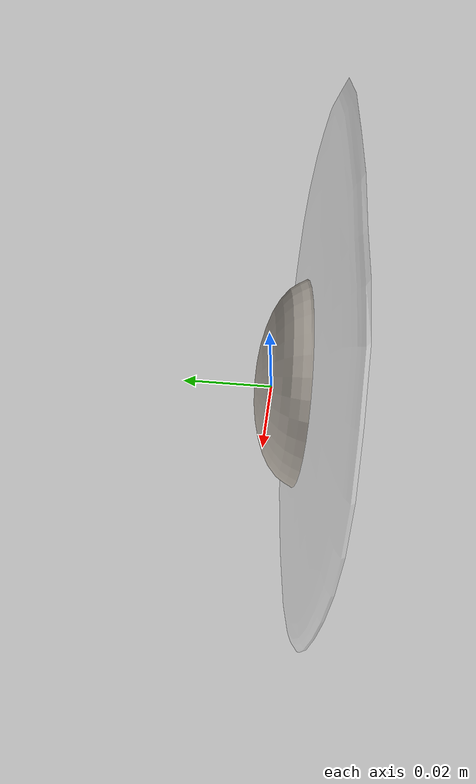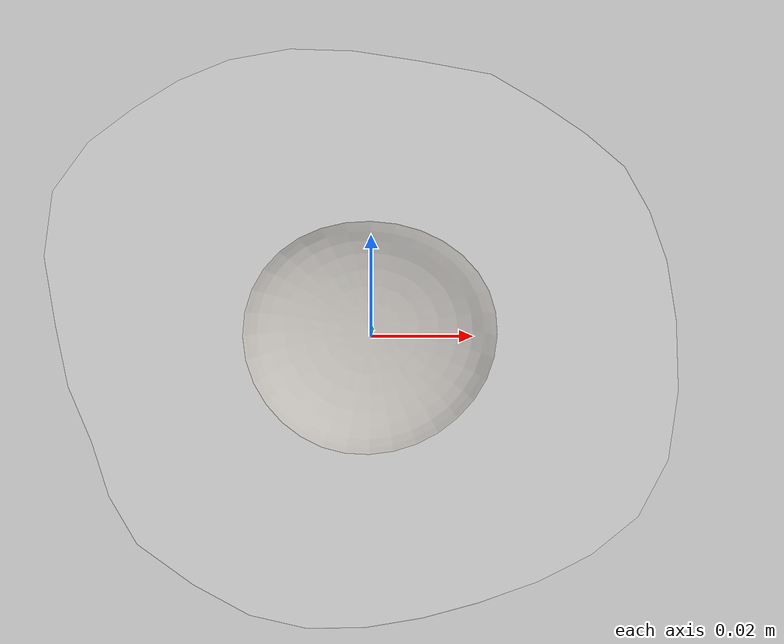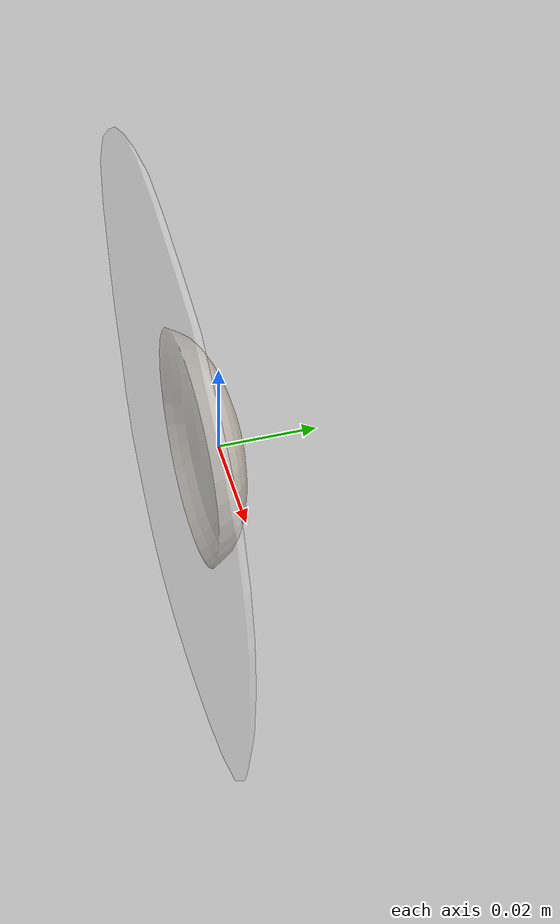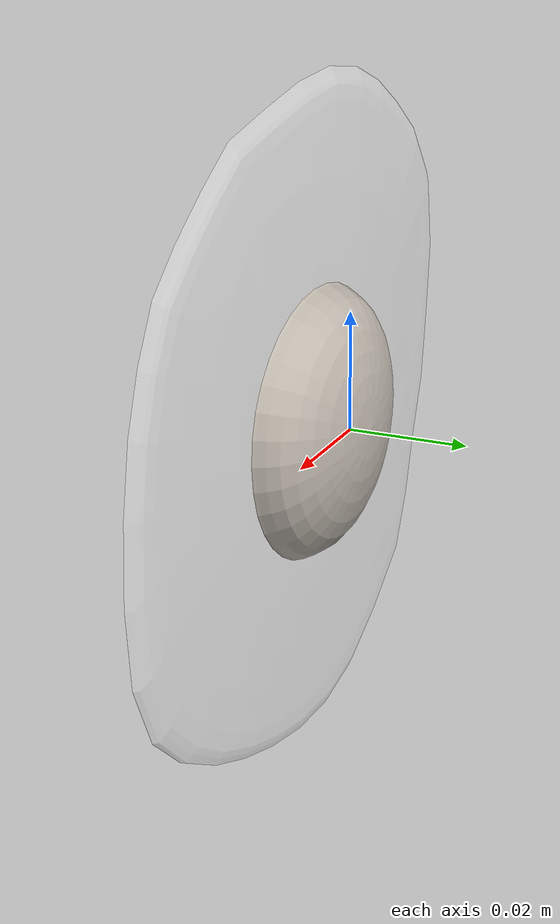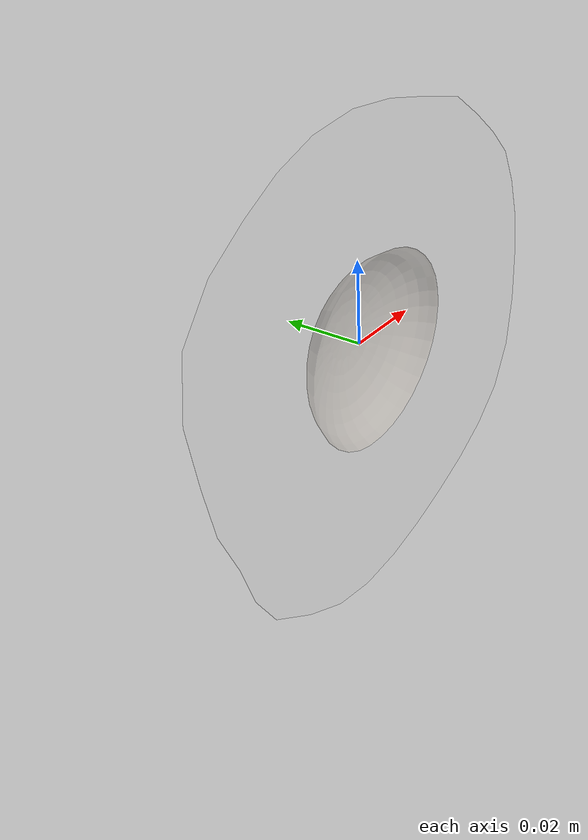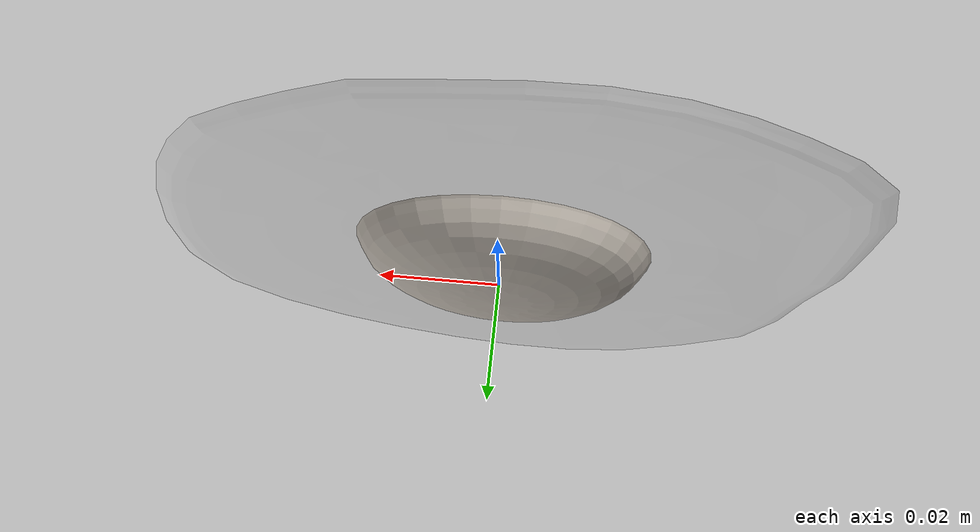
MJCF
<mujoco model="Egg_Cracked_13">
  <compiler autolimits="true" boundmass="0.01" angle="radian"/>
  <default>
    <default class="/">
      <default class="__VISUAL_MJT__">
        <geom contype="0" conaffinity="0" group="0"/>
      </default>
      <default class="__STRUCTURAL_MJT__">
        <geom contype="8" conaffinity="15" group="4" friction="0.90000000000000002 0.90000000000000002 0.001" solref="0.025000000000000001 1" solimp="0.998 0.998 0.001"/>
      </default>
      <default class="__DYNAMIC_MJT__">
        <geom contype="1" conaffinity="15" group="4" friction="0.90000000000000002 0.90000000000000002 0.001" solref="0.025000000000000001 1" solimp="0.998 0.998 0.001"/>
      </default>
    </default>
  </default>
  <asset>
    <texture name="Fried_Egg_White_Uncooked_Mat" type="2d" file="Fried_Egg_AlbedoTransparency.png"/>
    <material name="material_Fried_Egg_White_Uncooked_Mat" class="/" texture="Fried_Egg_White_Uncooked_Mat" specular="0.5" shininess="0.5" rgba="1 1 1 0.5"/>
    <texture name="Fried_Egg_Yolk_Mat" type="2d" file="Fried_Egg_AlbedoTransparency.png"/>
    <material name="material_Fried_Egg_Yolk_Mat" class="/" texture="Fried_Egg_Yolk_Mat" specular="0.5" shininess="0.5" rgba="1 1 1 1"/>
    <mesh name="Egg_Cracked_13_fried_egg_12_0" class="/" file="Egg_Cracked_13_fried_egg_12/Egg_Cracked_13_fried_egg_12_0.obj" scale="1 1 1"/>
    <mesh name="Egg_Cracked_13_fried_egg_12_1" class="/" file="Egg_Cracked_13_fried_egg_12/Egg_Cracked_13_fried_egg_12_1.obj" scale="1 1 1"/>
  </asset>
  <worldbody>
    <body name="Egg_Cracked_13">
      <joint name="Egg_Cracked_13_free" class="/" type="free" pos="0 0 0" axis="0 0 1" stiffness="0" range="0 0" armature="0" damping="0.10000000000000001" frictionloss="0"/>
      <body name="Egg_Cracked_13_fried_egg_12" pos="-0.00095 -0.01023 0.0018799999999999999" quat="1 0 0 0">
        <geom name="Egg_Cracked_13_fried_egg_12_0" class="__VISUAL_MJT__" type="mesh" material="material_Fried_Egg_White_Uncooked_Mat" shellinertia="false" mesh="Egg_Cracked_13_fried_egg_12_0"/>
        <geom name="Egg_Cracked_13_fried_egg_12_1" class="__VISUAL_MJT__" type="mesh" material="material_Fried_Egg_Yolk_Mat" shellinertia="false" mesh="Egg_Cracked_13_fried_egg_12_1"/>
        <geom name="Egg_Cracked_13_PrimitiveCollider_0" class="__DYNAMIC_MJT__" type="box" size="0.062480069696903229 0.010231256484985352 0.057547055184841156" rgba="0 1 0 1" pos="-0.00095333904027938843 0.010231256484985352 -0.0018763169646263123" quat="1 0 0 0"/>
      </body>
    </body>
  </worldbody>
</mujoco>
